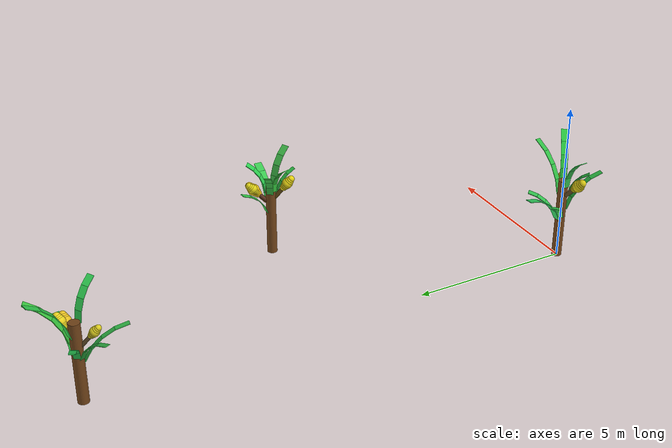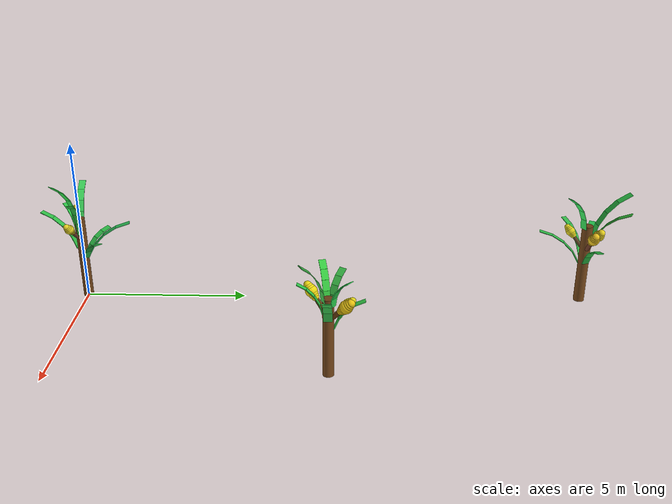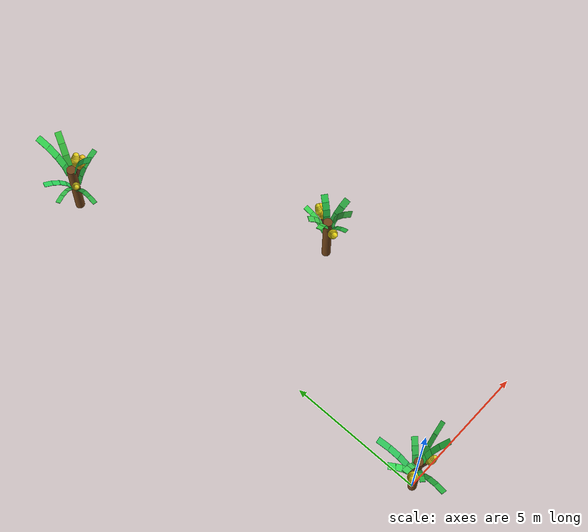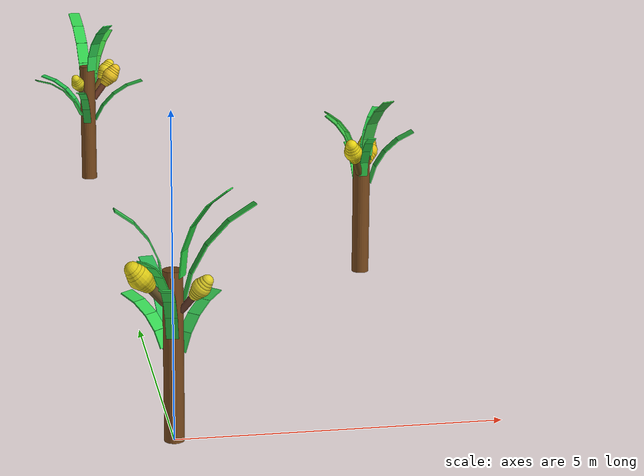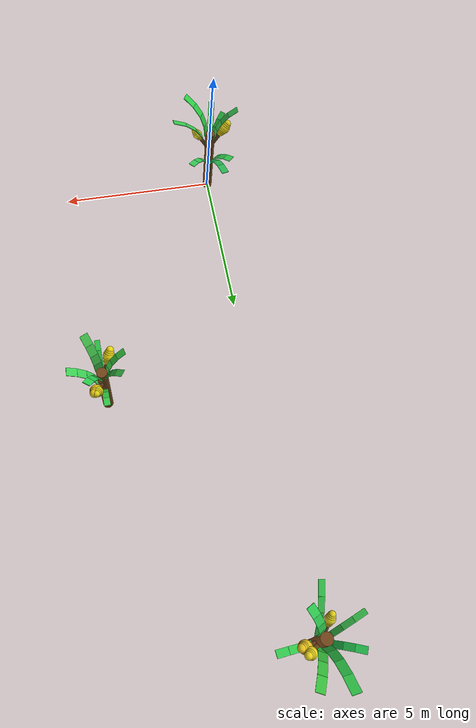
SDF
<sdf version="1.10">
 <world name="tree_world">
  <model name="tree_0_0">
   <static>true</static>
   <link name="trunk">
    <pose>0 0 1.320 0 0 0</pose>
    <collision name="trunk_collision">
     <geometry><cylinder><radius>0.153</radius><length>2.639</length></cylinder></geometry>
    </collision>
    <visual name="trunk_vis">
     <geometry><cylinder><radius>0.153</radius><length>2.639</length></cylinder></geometry>
     <material><diffuse>0.45 0.27 0.1 1</diffuse><ambient>0.45 0.27 0.1 1</ambient></material>
    </visual>
   </link>
   <link name="frond_0_0_0">
    <pose>0.147 0.018 2.108 0 0.260279 0.123816</pose>
    <collision name="frond_0_0_0_collision"><geometry><box><size>1.0 1.0 1.5</size></box></geometry></collision>
    <visual name="frond_seg_0_0_0_0">
     <pose>0.000 0 0.237 0 0.000000 0</pose>
     <geometry><box><size>0.020 0.159 0.473</size></box></geometry>
     <material><diffuse>0.19 0.75 0.27 1</diffuse><ambient>0.19 0.75 0.27 1</ambient></material>
    </visual>
    <visual name="frond_seg_0_0_0_1">
     <pose>0.061 0 0.702 0 0.261799 0</pose>
     <geometry><box><size>0.020 0.159 0.473</size></box></geometry>
     <material><diffuse>0.19 0.75 0.27 1</diffuse><ambient>0.19 0.75 0.27 1</ambient></material>
    </visual>
    <visual name="frond_seg_0_0_0_2">
     <pose>0.241 0 1.135 0 0.523599 0</pose>
     <geometry><box><size>0.020 0.159 0.473</size></box></geometry>
     <material><diffuse>0.19 0.75 0.27 1</diffuse><ambient>0.19 0.75 0.27 1</ambient></material>
    </visual>
    <visual name="frond_seg_0_0_0_3">
     <pose>0.526 0 1.507 0 0.785398 0</pose>
     <geometry><box><size>0.020 0.159 0.473</size></box></geometry>
     <material><diffuse>0.19 0.75 0.27 1</diffuse><ambient>0.19 0.75 0.27 1</ambient></material>
    </visual>
   </link>
   <link name="frond_0_0_1">
    <pose>0.105 0.105 1.344 0 0.490066 0.788202</pose>
    <visual name="frond_seg_0_0_1_0">
     <pose>0.000 0 0.150 0 0.000000 0</pose>
     <geometry><box><size>0.020 0.215 0.300</size></box></geometry>
     <material><diffuse>0.20 0.77 0.31 1</diffuse><ambient>0.20 0.77 0.31 1</ambient></material>
    </visual>
    <visual name="frond_seg_0_0_1_1">
     <pose>0.039 0 0.444 0 0.261799 0</pose>
     <geometry><box><size>0.020 0.215 0.300</size></box></geometry>
     <material><diffuse>0.20 0.77 0.31 1</diffuse><ambient>0.20 0.77 0.31 1</ambient></material>
    </visual>
    <visual name="frond_seg_0_0_1_2">
     <pose>0.152 0 0.719 0 0.523599 0</pose>
     <geometry><box><size>0.020 0.215 0.300</size></box></geometry>
     <material><diffuse>0.20 0.77 0.31 1</diffuse><ambient>0.20 0.77 0.31 1</ambient></material>
    </visual>
    <visual name="frond_seg_0_0_1_3">
     <pose>0.333 0 0.955 0 0.785398 0</pose>
     <geometry><box><size>0.020 0.215 0.300</size></box></geometry>
     <material><diffuse>0.20 0.77 0.31 1</diffuse><ambient>0.20 0.77 0.31 1</ambient></material>
    </visual>
   </link>
   <link name="frond_0_0_2">
    <pose>-0.024 0.147 1.320 0 0.497148 1.732814</pose>
    <visual name="frond_seg_0_0_2_0">
     <pose>0.000 0 0.226 0 0.000000 0</pose>
     <geometry><box><size>0.020 0.220 0.451</size></box></geometry>
     <material><diffuse>0.18 0.77 0.35 1</diffuse><ambient>0.18 0.77 0.35 1</ambient></material>
    </visual>
    <visual name="frond_seg_0_0_2_1">
     <pose>0.058 0 0.669 0 0.261799 0</pose>
     <geometry><box><size>0.020 0.220 0.451</size></box></geometry>
     <material><diffuse>0.18 0.77 0.35 1</diffuse><ambient>0.18 0.77 0.35 1</ambient></material>
    </visual>
    <visual name="frond_seg_0_0_2_2">
     <pose>0.230 0 1.083 0 0.523599 0</pose>
     <geometry><box><size>0.020 0.220 0.451</size></box></geometry>
     <material><diffuse>0.18 0.77 0.35 1</diffuse><ambient>0.18 0.77 0.35 1</ambient></material>
    </visual>
    <visual name="frond_seg_0_0_2_3">
     <pose>0.502 0 1.438 0 0.785398 0</pose>
     <geometry><box><size>0.020 0.220 0.451</size></box></geometry>
     <material><diffuse>0.18 0.77 0.35 1</diffuse><ambient>0.18 0.77 0.35 1</ambient></material>
    </visual>
   </link>
   <link name="frond_0_0_3">
    <pose>-0.096 0.114 1.422 0 0.466665 2.270636</pose>
    <visual name="frond_seg_0_0_3_0">
     <pose>0.000 0 0.137 0 0.000000 0</pose>
     <geometry><box><size>0.020 0.235 0.274</size></box></geometry>
     <material><diffuse>0.21 0.83 0.32 1</diffuse><ambient>0.21 0.83 0.32 1</ambient></material>
    </visual>
    <visual name="frond_seg_0_0_3_1">
     <pose>0.035 0 0.407 0 0.261799 0</pose>
     <geometry><box><size>0.020 0.235 0.274</size></box></geometry>
     <material><diffuse>0.21 0.83 0.32 1</diffuse><ambient>0.21 0.83 0.32 1</ambient></material>
    </visual>
    <visual name="frond_seg_0_0_3_2">
     <pose>0.140 0 0.658 0 0.523599 0</pose>
     <geometry><box><size>0.020 0.235 0.274</size></box></geometry>
     <material><diffuse>0.21 0.83 0.32 1</diffuse><ambient>0.21 0.83 0.32 1</ambient></material>
    </visual>
    <visual name="frond_seg_0_0_3_3">
     <pose>0.305 0 0.873 0 0.785398 0</pose>
     <geometry><box><size>0.020 0.235 0.274</size></box></geometry>
     <material><diffuse>0.21 0.83 0.32 1</diffuse><ambient>0.21 0.83 0.32 1</ambient></material>
    </visual>
   </link>
   <link name="frond_0_0_4">
    <pose>-0.148 -0.003 2.450 0 0.155517 3.160562</pose>
    <visual name="frond_seg_0_0_4_0">
     <pose>0.000 0 0.172 0 0.000000 0</pose>
     <geometry><box><size>0.020 0.205 0.345</size></box></geometry>
     <material><diffuse>0.23 0.81 0.34 1</diffuse><ambient>0.23 0.81 0.34 1</ambient></material>
    </visual>
    <visual name="frond_seg_0_0_4_1">
     <pose>0.045 0 0.511 0 0.261799 0</pose>
     <geometry><box><size>0.020 0.205 0.345</size></box></geometry>
     <material><diffuse>0.23 0.81 0.34 1</diffuse><ambient>0.23 0.81 0.34 1</ambient></material>
    </visual>
    <visual name="frond_seg_0_0_4_2">
     <pose>0.175 0 0.827 0 0.523599 0</pose>
     <geometry><box><size>0.020 0.205 0.345</size></box></geometry>
     <material><diffuse>0.23 0.81 0.34 1</diffuse><ambient>0.23 0.81 0.34 1</ambient></material>
    </visual>
    <visual name="frond_seg_0_0_4_3">
     <pose>0.383 0 1.098 0 0.785398 0</pose>
     <geometry><box><size>0.020 0.205 0.345</size></box></geometry>
     <material><diffuse>0.23 0.81 0.34 1</diffuse><ambient>0.23 0.81 0.34 1</ambient></material>
    </visual>
   </link>
   <link name="frond_0_0_5">
    <pose>-0.101 -0.109 2.141 0 0.250428 3.967492</pose>
    <visual name="frond_seg_0_0_5_0">
     <pose>0.000 0 0.131 0 0.000000 0</pose>
     <geometry><box><size>0.020 0.173 0.261</size></box></geometry>
     <material><diffuse>0.18 0.76 0.27 1</diffuse><ambient>0.18 0.76 0.27 1</ambient></material>
    </visual>
    <visual name="frond_seg_0_0_5_1">
     <pose>0.034 0 0.388 0 0.261799 0</pose>
     <geometry><box><size>0.020 0.173 0.261</size></box></geometry>
     <material><diffuse>0.18 0.76 0.27 1</diffuse><ambient>0.18 0.76 0.27 1</ambient></material>
    </visual>
    <visual name="frond_seg_0_0_5_2">
     <pose>0.133 0 0.627 0 0.523599 0</pose>
     <geometry><box><size>0.020 0.173 0.261</size></box></geometry>
     <material><diffuse>0.18 0.76 0.27 1</diffuse><ambient>0.18 0.76 0.27 1</ambient></material>
    </visual>
    <visual name="frond_seg_0_0_5_3">
     <pose>0.291 0 0.833 0 0.785398 0</pose>
     <geometry><box><size>0.020 0.173 0.261</size></box></geometry>
     <material><diffuse>0.18 0.76 0.27 1</diffuse><ambient>0.18 0.76 0.27 1</ambient></material>
    </visual>
   </link>
   <link name="frond_0_0_6">
    <pose>-0.031 -0.145 1.640 0 0.401200 4.503474</pose>
    <visual name="frond_seg_0_0_6_0">
     <pose>0.000 0 0.204 0 0.000000 0</pose>
     <geometry><box><size>0.020 0.186 0.409</size></box></geometry>
     <material><diffuse>0.19 0.77 0.28 1</diffuse><ambient>0.19 0.77 0.28 1</ambient></material>
    </visual>
    <visual name="frond_seg_0_0_6_1">
     <pose>0.053 0 0.606 0 0.261799 0</pose>
     <geometry><box><size>0.020 0.186 0.409</size></box></geometry>
     <material><diffuse>0.19 0.77 0.28 1</diffuse><ambient>0.19 0.77 0.28 1</ambient></material>
    </visual>
    <visual name="frond_seg_0_0_6_2">
     <pose>0.208 0 0.981 0 0.523599 0</pose>
     <geometry><box><size>0.020 0.186 0.409</size></box></geometry>
     <material><diffuse>0.19 0.77 0.28 1</diffuse><ambient>0.19 0.77 0.28 1</ambient></material>
    </visual>
    <visual name="frond_seg_0_0_6_3">
     <pose>0.455 0 1.303 0 0.785398 0</pose>
     <geometry><box><size>0.020 0.186 0.409</size></box></geometry>
     <material><diffuse>0.19 0.77 0.28 1</diffuse><ambient>0.19 0.77 0.28 1</ambient></material>
    </visual>
   </link>
   <link name="frond_0_0_7">
    <pose>0.126 -0.078 2.549 0 0.106745 5.726419</pose>
    <visual name="frond_seg_0_0_7_0">
     <pose>0.000 0 0.206 0 0.000000 0</pose>
     <geometry><box><size>0.020 0.211 0.412</size></box></geometry>
     <material><diffuse>0.17 0.82 0.27 1</diffuse><ambient>0.17 0.82 0.27 1</ambient></material>
    </visual>
    <visual name="frond_seg_0_0_7_1">
     <pose>0.053 0 0.611 0 0.261799 0</pose>
     <geometry><box><size>0.020 0.211 0.412</size></box></geometry>
     <material><diffuse>0.17 0.82 0.27 1</diffuse><ambient>0.17 0.82 0.27 1</ambient></material>
    </visual>
    <visual name="frond_seg_0_0_7_2">
     <pose>0.210 0 0.988 0 0.523599 0</pose>
     <geometry><box><size>0.020 0.211 0.412</size></box></geometry>
     <material><diffuse>0.17 0.82 0.27 1</diffuse><ambient>0.17 0.82 0.27 1</ambient></material>
    </visual>
    <visual name="frond_seg_0_0_7_3">
     <pose>0.458 0 1.312 0 0.785398 0</pose>
     <geometry><box><size>0.020 0.211 0.412</size></box></geometry>
     <material><diffuse>0.17 0.82 0.27 1</diffuse><ambient>0.17 0.82 0.27 1</ambient></material>
    </visual>
   </link>
   <link name="fruit_bunch_0_0_0">
    <pose>-0.122 -0.045 2.165 0 0.730353 3.499418</pose>
    <visual name="stalk_0_0_0">
     <pose>0 0 0.233 0 0 0</pose>
     <geometry><cylinder><radius>0.075</radius><length>0.466</length></cylinder></geometry>
     <material><diffuse>0.37 0.29 0.14 1</diffuse><ambient>0.37 0.29 0.14 1</ambient></material>
    </visual>
    <visual name="fruit_0_0_0_seg0">
     <pose>0 0 0.419 0 0 0</pose>
     <geometry><sphere><radius>0.122</radius></sphere></geometry>
     <material><diffuse>0.85 0.78 0.08 1</diffuse><ambient>0.85 0.78 0.08 1</ambient></material>
    </visual>
    <visual name="fruit_0_0_0_seg1">
     <pose>0 0 0.478 0 0 0</pose>
     <geometry><sphere><radius>0.144</radius></sphere></geometry>
     <material><diffuse>0.85 0.78 0.08 1</diffuse><ambient>0.85 0.78 0.08 1</ambient></material>
    </visual>
    <visual name="fruit_0_0_0_seg2">
     <pose>0 0 0.536 0 0 0</pose>
     <geometry><sphere><radius>0.166</radius></sphere></geometry>
     <material><diffuse>0.85 0.78 0.08 1</diffuse><ambient>0.85 0.78 0.08 1</ambient></material>
    </visual>
    <visual name="fruit_0_0_0_seg3">
     <pose>0 0 0.595 0 0 0</pose>
     <geometry><sphere><radius>0.188</radius></sphere></geometry>
     <material><diffuse>0.85 0.78 0.08 1</diffuse><ambient>0.85 0.78 0.08 1</ambient></material>
    </visual>
    <visual name="fruit_0_0_0_seg4">
     <pose>0 0 0.653 0 0 0</pose>
     <geometry><sphere><radius>0.166</radius></sphere></geometry>
     <material><diffuse>0.85 0.78 0.08 1</diffuse><ambient>0.85 0.78 0.08 1</ambient></material>
    </visual>
    <visual name="fruit_0_0_0_seg5">
     <pose>0 0 0.712 0 0 0</pose>
     <geometry><sphere><radius>0.144</radius></sphere></geometry>
     <material><diffuse>0.85 0.78 0.08 1</diffuse><ambient>0.85 0.78 0.08 1</ambient></material>
    </visual>
    <visual name="fruit_0_0_0_seg6">
     <pose>0 0 0.770 0 0 0</pose>
     <geometry><sphere><radius>0.122</radius></sphere></geometry>
     <material><diffuse>0.85 0.78 0.08 1</diffuse><ambient>0.85 0.78 0.08 1</ambient></material>
    </visual>
   </link>
   <link name="fruit_bunch_0_0_1">
    <pose>0.111 -0.066 2.037 0 0.690950 5.746272</pose>
    <visual name="stalk_0_0_1">
     <pose>0 0 0.193 0 0 0</pose>
     <geometry><cylinder><radius>0.058</radius><length>0.387</length></cylinder></geometry>
     <material><diffuse>0.39 0.22 0.15 1</diffuse><ambient>0.39 0.22 0.15 1</ambient></material>
    </visual>
    <visual name="fruit_0_0_1_seg0">
     <pose>0 0 0.351 0 0 0</pose>
     <geometry><sphere><radius>0.094</radius></sphere></geometry>
     <material><diffuse>0.88 0.81 0.14 1</diffuse><ambient>0.88 0.81 0.14 1</ambient></material>
    </visual>
    <visual name="fruit_0_0_1_seg1">
     <pose>0 0 0.400 0 0 0</pose>
     <geometry><sphere><radius>0.111</radius></sphere></geometry>
     <material><diffuse>0.88 0.81 0.14 1</diffuse><ambient>0.88 0.81 0.14 1</ambient></material>
    </visual>
    <visual name="fruit_0_0_1_seg2">
     <pose>0 0 0.449 0 0 0</pose>
     <geometry><sphere><radius>0.128</radius></sphere></geometry>
     <material><diffuse>0.88 0.81 0.14 1</diffuse><ambient>0.88 0.81 0.14 1</ambient></material>
    </visual>
    <visual name="fruit_0_0_1_seg3">
     <pose>0 0 0.498 0 0 0</pose>
     <geometry><sphere><radius>0.145</radius></sphere></geometry>
     <material><diffuse>0.88 0.81 0.14 1</diffuse><ambient>0.88 0.81 0.14 1</ambient></material>
    </visual>
    <visual name="fruit_0_0_1_seg4">
     <pose>0 0 0.547 0 0 0</pose>
     <geometry><sphere><radius>0.128</radius></sphere></geometry>
     <material><diffuse>0.88 0.81 0.14 1</diffuse><ambient>0.88 0.81 0.14 1</ambient></material>
    </visual>
    <visual name="fruit_0_0_1_seg5">
     <pose>0 0 0.596 0 0 0</pose>
     <geometry><sphere><radius>0.111</radius></sphere></geometry>
     <material><diffuse>0.88 0.81 0.14 1</diffuse><ambient>0.88 0.81 0.14 1</ambient></material>
    </visual>
    <visual name="fruit_0_0_1_seg6">
     <pose>0 0 0.645 0 0 0</pose>
     <geometry><sphere><radius>0.094</radius></sphere></geometry>
     <material><diffuse>0.88 0.81 0.14 1</diffuse><ambient>0.88 0.81 0.14 1</ambient></material>
    </visual>
   </link>
  </model>
  <model name="tree_1_0">
   <pose>4.50 7.79 0 0 0 0</pose>
   <static>true</static>
   <link name="trunk">
    <pose>0 0 1.175 0 0 0</pose>
    <visual name="trunk_vis">
     <geometry><cylinder><radius>0.157</radius><length>2.349</length></cylinder></geometry>
     <material><diffuse>0.45 0.27 0.1 1</diffuse><ambient>0.45 0.27 0.1 1</ambient></material>
    </visual>
   </link>
   <link name="frond_1_0_0">
    <pose>0.153 -0.005 1.736 0 0.312846 -0.032366</pose>
    <visual name="frond_seg_1_0_0_0">
     <pose>0.000 0 0.163 0 0.000000 0</pose>
     <geometry><box><size>0.020 0.248 0.326</size></box></geometry>
     <material><diffuse>0.23 0.80 0.32 1</diffuse><ambient>0.23 0.80 0.32 1</ambient></material>
    </visual>
    <visual name="frond_seg_1_0_0_1">
     <pose>0.042 0 0.483 0 0.261799 0</pose>
     <geometry><box><size>0.020 0.248 0.326</size></box></geometry>
     <material><diffuse>0.23 0.80 0.32 1</diffuse><ambient>0.23 0.80 0.32 1</ambient></material>
    </visual>
    <visual name="frond_seg_1_0_0_2">
     <pose>0.166 0 0.781 0 0.523599 0</pose>
     <geometry><box><size>0.020 0.248 0.326</size></box></geometry>
     <material><diffuse>0.23 0.80 0.32 1</diffuse><ambient>0.23 0.80 0.32 1</ambient></material>
    </visual>
    <visual name="frond_seg_1_0_0_3">
     <pose>0.362 0 1.037 0 0.785398 0</pose>
     <geometry><box><size>0.020 0.248 0.326</size></box></geometry>
     <material><diffuse>0.23 0.80 0.32 1</diffuse><ambient>0.23 0.80 0.32 1</ambient></material>
    </visual>
   </link>
   <link name="frond_1_0_1">
    <pose>0.092 0.122 2.137 0 0.175526 0.926188</pose>
    <visual name="frond_seg_1_0_1_0">
     <pose>0.000 0 0.138 0 0.000000 0</pose>
     <geometry><box><size>0.020 0.238 0.276</size></box></geometry>
     <material><diffuse>0.18 0.84 0.32 1</diffuse><ambient>0.18 0.84 0.32 1</ambient></material>
    </visual>
    <visual name="frond_seg_1_0_1_1">
     <pose>0.036 0 0.409 0 0.261799 0</pose>
     <geometry><box><size>0.020 0.238 0.276</size></box></geometry>
     <material><diffuse>0.18 0.84 0.32 1</diffuse><ambient>0.18 0.84 0.32 1</ambient></material>
    </visual>
    <visual name="frond_seg_1_0_1_2">
     <pose>0.140 0 0.662 0 0.523599 0</pose>
     <geometry><box><size>0.020 0.238 0.276</size></box></geometry>
     <material><diffuse>0.18 0.84 0.32 1</diffuse><ambient>0.18 0.84 0.32 1</ambient></material>
    </visual>
    <visual name="frond_seg_1_0_1_3">
     <pose>0.307 0 0.879 0 0.785398 0</pose>
     <geometry><box><size>0.020 0.238 0.276</size></box></geometry>
     <material><diffuse>0.18 0.84 0.32 1</diffuse><ambient>0.18 0.84 0.32 1</ambient></material>
    </visual>
   </link>
   <link name="frond_1_0_2">
    <pose>-0.007 0.153 1.463 0 0.405254 1.614789</pose>
    <visual name="frond_seg_1_0_2_0">
     <pose>0.000 0 0.151 0 0.000000 0</pose>
     <geometry><box><size>0.020 0.184 0.303</size></box></geometry>
     <material><diffuse>0.22 0.84 0.30 1</diffuse><ambient>0.22 0.84 0.30 1</ambient></material>
    </visual>
    <visual name="frond_seg_1_0_2_1">
     <pose>0.039 0 0.449 0 0.261799 0</pose>
     <geometry><box><size>0.020 0.184 0.303</size></box></geometry>
     <material><diffuse>0.22 0.84 0.30 1</diffuse><ambient>0.22 0.84 0.30 1</ambient></material>
    </visual>
    <visual name="frond_seg_1_0_2_2">
     <pose>0.154 0 0.726 0 0.523599 0</pose>
     <geometry><box><size>0.020 0.184 0.303</size></box></geometry>
     <material><diffuse>0.22 0.84 0.30 1</diffuse><ambient>0.22 0.84 0.30 1</ambient></material>
    </visual>
    <visual name="frond_seg_1_0_2_3">
     <pose>0.337 0 0.964 0 0.785398 0</pose>
     <geometry><box><size>0.020 0.184 0.303</size></box></geometry>
     <material><diffuse>0.22 0.84 0.30 1</diffuse><ambient>0.22 0.84 0.30 1</ambient></material>
    </visual>
   </link>
   <link name="frond_1_0_3">
    <pose>-0.128 0.084 2.113 0 0.183865 2.562481</pose>
    <visual name="frond_seg_1_0_3_0">
     <pose>0.000 0 0.131 0 0.000000 0</pose>
     <geometry><box><size>0.020 0.213 0.263</size></box></geometry>
     <material><diffuse>0.23 0.75 0.28 1</diffuse><ambient>0.23 0.75 0.28 1</ambient></material>
    </visual>
    <visual name="frond_seg_1_0_3_1">
     <pose>0.034 0 0.390 0 0.261799 0</pose>
     <geometry><box><size>0.020 0.213 0.263</size></box></geometry>
     <material><diffuse>0.23 0.75 0.28 1</diffuse><ambient>0.23 0.75 0.28 1</ambient></material>
    </visual>
    <visual name="frond_seg_1_0_3_2">
     <pose>0.134 0 0.630 0 0.523599 0</pose>
     <geometry><box><size>0.020 0.213 0.263</size></box></geometry>
     <material><diffuse>0.23 0.75 0.28 1</diffuse><ambient>0.23 0.75 0.28 1</ambient></material>
    </visual>
    <visual name="frond_seg_1_0_3_3">
     <pose>0.292 0 0.837 0 0.785398 0</pose>
     <geometry><box><size>0.020 0.213 0.263</size></box></geometry>
     <material><diffuse>0.23 0.75 0.28 1</diffuse><ambient>0.23 0.75 0.28 1</ambient></material>
    </visual>
   </link>
   <link name="frond_1_0_4">
    <pose>-0.148 -0.039 2.185 0 0.158546 3.397089</pose>
    <visual name="frond_seg_1_0_4_0">
     <pose>0.000 0 0.145 0 0.000000 0</pose>
     <geometry><box><size>0.020 0.194 0.290</size></box></geometry>
     <material><diffuse>0.22 0.81 0.26 1</diffuse><ambient>0.22 0.81 0.26 1</ambient></material>
    </visual>
    <visual name="frond_seg_1_0_4_1">
     <pose>0.038 0 0.431 0 0.261799 0</pose>
     <geometry><box><size>0.020 0.194 0.290</size></box></geometry>
     <material><diffuse>0.22 0.81 0.26 1</diffuse><ambient>0.22 0.81 0.26 1</ambient></material>
    </visual>
    <visual name="frond_seg_1_0_4_2">
     <pose>0.148 0 0.697 0 0.523599 0</pose>
     <geometry><box><size>0.020 0.194 0.290</size></box></geometry>
     <material><diffuse>0.22 0.81 0.26 1</diffuse><ambient>0.22 0.81 0.26 1</ambient></material>
    </visual>
    <visual name="frond_seg_1_0_4_3">
     <pose>0.323 0 0.925 0 0.785398 0</pose>
     <geometry><box><size>0.020 0.194 0.290</size></box></geometry>
     <material><diffuse>0.22 0.81 0.26 1</diffuse><ambient>0.22 0.81 0.26 1</ambient></material>
    </visual>
   </link>
   <link name="frond_1_0_5">
    <pose>0.001 -0.153 1.890 0 0.260609 4.721018</pose>
    <visual name="frond_seg_1_0_5_0">
     <pose>0.000 0 0.144 0 0.000000 0</pose>
     <geometry><box><size>0.020 0.154 0.287</size></box></geometry>
     <material><diffuse>0.19 0.81 0.29 1</diffuse><ambient>0.19 0.81 0.29 1</ambient></material>
    </visual>
    <visual name="frond_seg_1_0_5_1">
     <pose>0.037 0 0.426 0 0.261799 0</pose>
     <geometry><box><size>0.020 0.154 0.287</size></box></geometry>
     <material><diffuse>0.19 0.81 0.29 1</diffuse><ambient>0.19 0.81 0.29 1</ambient></material>
    </visual>
    <visual name="frond_seg_1_0_5_2">
     <pose>0.146 0 0.689 0 0.523599 0</pose>
     <geometry><box><size>0.020 0.154 0.287</size></box></geometry>
     <material><diffuse>0.19 0.81 0.29 1</diffuse><ambient>0.19 0.81 0.29 1</ambient></material>
    </visual>
    <visual name="frond_seg_1_0_5_3">
     <pose>0.320 0 0.915 0 0.785398 0</pose>
     <geometry><box><size>0.020 0.154 0.287</size></box></geometry>
     <material><diffuse>0.19 0.81 0.29 1</diffuse><ambient>0.19 0.81 0.29 1</ambient></material>
    </visual>
   </link>
   <link name="frond_1_0_6">
    <pose>0.064 -0.139 2.267 0 0.112136 5.145690</pose>
    <visual name="frond_seg_1_0_6_0">
     <pose>0.000 0 0.171 0 0.000000 0</pose>
     <geometry><box><size>0.020 0.243 0.341</size></box></geometry>
     <material><diffuse>0.25 0.75 0.29 1</diffuse><ambient>0.25 0.75 0.29 1</ambient></material>
    </visual>
    <visual name="frond_seg_1_0_6_1">
     <pose>0.044 0 0.506 0 0.261799 0</pose>
     <geometry><box><size>0.020 0.243 0.341</size></box></geometry>
     <material><diffuse>0.25 0.75 0.29 1</diffuse><ambient>0.25 0.75 0.29 1</ambient></material>
    </visual>
    <visual name="frond_seg_1_0_6_2">
     <pose>0.174 0 0.818 0 0.523599 0</pose>
     <geometry><box><size>0.020 0.243 0.341</size></box></geometry>
     <material><diffuse>0.25 0.75 0.29 1</diffuse><ambient>0.25 0.75 0.29 1</ambient></material>
    </visual>
    <visual name="frond_seg_1_0_6_3">
     <pose>0.380 0 1.087 0 0.785398 0</pose>
     <geometry><box><size>0.020 0.243 0.341</size></box></geometry>
     <material><diffuse>0.25 0.75 0.29 1</diffuse><ambient>0.25 0.75 0.29 1</ambient></material>
    </visual>
   </link>
   <link name="fruit_bunch_1_0_0">
    <pose>-0.066 -0.115 1.945 0 0.672594 4.190466</pose>
    <visual name="stalk_1_0_0">
     <pose>0 0 0.241 0 0 0</pose>
     <geometry><cylinder><radius>0.067</radius><length>0.481</length></cylinder></geometry>
     <material><diffuse>0.37 0.28 0.07 1</diffuse><ambient>0.37 0.28 0.07 1</ambient></material>
    </visual>
    <visual name="fruit_1_0_0_seg0">
     <pose>0 0 0.439 0 0 0</pose>
     <geometry><sphere><radius>0.109</radius></sphere></geometry>
     <material><diffuse>0.92 0.84 0.07 1</diffuse><ambient>0.92 0.84 0.07 1</ambient></material>
    </visual>
    <visual name="fruit_1_0_0_seg1">
     <pose>0 0 0.502 0 0 0</pose>
     <geometry><sphere><radius>0.128</radius></sphere></geometry>
     <material><diffuse>0.92 0.84 0.07 1</diffuse><ambient>0.92 0.84 0.07 1</ambient></material>
    </visual>
    <visual name="fruit_1_0_0_seg2">
     <pose>0 0 0.564 0 0 0</pose>
     <geometry><sphere><radius>0.148</radius></sphere></geometry>
     <material><diffuse>0.92 0.84 0.07 1</diffuse><ambient>0.92 0.84 0.07 1</ambient></material>
    </visual>
    <visual name="fruit_1_0_0_seg3">
     <pose>0 0 0.626 0 0 0</pose>
     <geometry><sphere><radius>0.167</radius></sphere></geometry>
     <material><diffuse>0.92 0.84 0.07 1</diffuse><ambient>0.92 0.84 0.07 1</ambient></material>
    </visual>
    <visual name="fruit_1_0_0_seg4">
     <pose>0 0 0.688 0 0 0</pose>
     <geometry><sphere><radius>0.148</radius></sphere></geometry>
     <material><diffuse>0.92 0.84 0.07 1</diffuse><ambient>0.92 0.84 0.07 1</ambient></material>
    </visual>
    <visual name="fruit_1_0_0_seg5">
     <pose>0 0 0.751 0 0 0</pose>
     <geometry><sphere><radius>0.128</radius></sphere></geometry>
     <material><diffuse>0.92 0.84 0.07 1</diffuse><ambient>0.92 0.84 0.07 1</ambient></material>
    </visual>
    <visual name="fruit_1_0_0_seg6">
     <pose>0 0 0.813 0 0 0</pose>
     <geometry><sphere><radius>0.109</radius></sphere></geometry>
     <material><diffuse>0.92 0.84 0.07 1</diffuse><ambient>0.92 0.84 0.07 1</ambient></material>
    </visual>
   </link>
   <link name="fruit_bunch_1_0_1">
    <pose>0.058 0.121 1.816 0 0.772219 1.126956</pose>
    <visual name="stalk_1_0_1">
     <pose>0 0 0.206 0 0 0</pose>
     <geometry><cylinder><radius>0.073</radius><length>0.412</length></cylinder></geometry>
     <material><diffuse>0.42 0.24 0.05 1</diffuse><ambient>0.42 0.24 0.05 1</ambient></material>
    </visual>
    <visual name="fruit_1_0_1_seg0">
     <pose>0 0 0.366 0 0 0</pose>
     <geometry><sphere><radius>0.119</radius></sphere></geometry>
     <material><diffuse>0.92 0.77 0.07 1</diffuse><ambient>0.92 0.77 0.07 1</ambient></material>
    </visual>
    <visual name="fruit_1_0_1_seg1">
     <pose>0 0 0.430 0 0 0</pose>
     <geometry><sphere><radius>0.141</radius></sphere></geometry>
     <material><diffuse>0.92 0.77 0.07 1</diffuse><ambient>0.92 0.77 0.07 1</ambient></material>
    </visual>
    <visual name="fruit_1_0_1_seg2">
     <pose>0 0 0.493 0 0 0</pose>
     <geometry><sphere><radius>0.162</radius></sphere></geometry>
     <material><diffuse>0.92 0.77 0.07 1</diffuse><ambient>0.92 0.77 0.07 1</ambient></material>
    </visual>
    <visual name="fruit_1_0_1_seg3">
     <pose>0 0 0.557 0 0 0</pose>
     <geometry><sphere><radius>0.184</radius></sphere></geometry>
     <material><diffuse>0.92 0.77 0.07 1</diffuse><ambient>0.92 0.77 0.07 1</ambient></material>
    </visual>
    <visual name="fruit_1_0_1_seg4">
     <pose>0 0 0.621 0 0 0</pose>
     <geometry><sphere><radius>0.162</radius></sphere></geometry>
     <material><diffuse>0.92 0.77 0.07 1</diffuse><ambient>0.92 0.77 0.07 1</ambient></material>
    </visual>
    <visual name="fruit_1_0_1_seg5">
     <pose>0 0 0.685 0 0 0</pose>
     <geometry><sphere><radius>0.141</radius></sphere></geometry>
     <material><diffuse>0.92 0.77 0.07 1</diffuse><ambient>0.92 0.77 0.07 1</ambient></material>
    </visual>
    <visual name="fruit_1_0_1_seg6">
     <pose>0 0 0.749 0 0 0</pose>
     <geometry><sphere><radius>0.119</radius></sphere></geometry>
     <material><diffuse>0.92 0.77 0.07 1</diffuse><ambient>0.92 0.77 0.07 1</ambient></material>
    </visual>
   </link>
   <link name="fruit_bunch_1_0_2">
    <pose>0.042 0.128 1.844 0 0.771165 1.253953</pose>
    <visual name="stalk_1_0_2">
     <pose>0 0 0.237 0 0 0</pose>
     <geometry><cylinder><radius>0.060</radius><length>0.473</length></cylinder></geometry>
     <material><diffuse>0.38 0.21 0.13 1</diffuse><ambient>0.38 0.21 0.13 1</ambient></material>
    </visual>
    <visual name="fruit_1_0_2_seg0">
     <pose>0 0 0.435 0 0 0</pose>
     <geometry><sphere><radius>0.098</radius></sphere></geometry>
     <material><diffuse>0.87 0.82 0.09 1</diffuse><ambient>0.87 0.82 0.09 1</ambient></material>
    </visual>
    <visual name="fruit_1_0_2_seg1">
     <pose>0 0 0.490 0 0 0</pose>
     <geometry><sphere><radius>0.116</radius></sphere></geometry>
     <material><diffuse>0.87 0.82 0.09 1</diffuse><ambient>0.87 0.82 0.09 1</ambient></material>
    </visual>
    <visual name="fruit_1_0_2_seg2">
     <pose>0 0 0.545 0 0 0</pose>
     <geometry><sphere><radius>0.134</radius></sphere></geometry>
     <material><diffuse>0.87 0.82 0.09 1</diffuse><ambient>0.87 0.82 0.09 1</ambient></material>
    </visual>
    <visual name="fruit_1_0_2_seg3">
     <pose>0 0 0.601 0 0 0</pose>
     <geometry><sphere><radius>0.151</radius></sphere></geometry>
     <material><diffuse>0.87 0.82 0.09 1</diffuse><ambient>0.87 0.82 0.09 1</ambient></material>
    </visual>
    <visual name="fruit_1_0_2_seg4">
     <pose>0 0 0.656 0 0 0</pose>
     <geometry><sphere><radius>0.134</radius></sphere></geometry>
     <material><diffuse>0.87 0.82 0.09 1</diffuse><ambient>0.87 0.82 0.09 1</ambient></material>
    </visual>
    <visual name="fruit_1_0_2_seg5">
     <pose>0 0 0.711 0 0 0</pose>
     <geometry><sphere><radius>0.116</radius></sphere></geometry>
     <material><diffuse>0.87 0.82 0.09 1</diffuse><ambient>0.87 0.82 0.09 1</ambient></material>
    </visual>
    <visual name="fruit_1_0_2_seg6">
     <pose>0 0 0.766 0 0 0</pose>
     <geometry><sphere><radius>0.098</radius></sphere></geometry>
     <material><diffuse>0.87 0.82 0.09 1</diffuse><ambient>0.87 0.82 0.09 1</ambient></material>
    </visual>
   </link>
  </model>
  <model name="tree_2_0">
   <pose>0.00 15.59 0 0 0 0</pose>
   <static>true</static>
   <link name="trunk">
    <pose>0 0 1.270 0 0 0</pose>
    <visual name="trunk_vis">
     <geometry><cylinder><radius>0.164</radius><length>2.540</length></cylinder></geometry>
     <material><diffuse>0.45 0.27 0.1 1</diffuse><ambient>0.45 0.27 0.1 1</ambient></material>
    </visual>
   </link>
   <link name="frond_2_0_0">
    <pose>0.159 0.017 1.336 0 0.517824 0.108081</pose>
    <visual name="frond_seg_2_0_0_0">
     <pose>0.000 0 0.176 0 0.000000 0</pose>
     <geometry><box><size>0.020 0.204 0.352</size></box></geometry>
     <material><diffuse>0.19 0.77 0.29 1</diffuse><ambient>0.19 0.77 0.29 1</ambient></material>
    </visual>
    <visual name="frond_seg_2_0_0_1">
     <pose>0.046 0 0.522 0 0.261799 0</pose>
     <geometry><box><size>0.020 0.204 0.352</size></box></geometry>
     <material><diffuse>0.19 0.77 0.29 1</diffuse><ambient>0.19 0.77 0.29 1</ambient></material>
    </visual>
    <visual name="frond_seg_2_0_0_2">
     <pose>0.179 0 0.844 0 0.523599 0</pose>
     <geometry><box><size>0.020 0.204 0.352</size></box></geometry>
     <material><diffuse>0.19 0.77 0.29 1</diffuse><ambient>0.19 0.77 0.29 1</ambient></material>
    </visual>
    <visual name="frond_seg_2_0_0_3">
     <pose>0.391 0 1.121 0 0.785398 0</pose>
     <geometry><box><size>0.020 0.204 0.352</size></box></geometry>
     <material><diffuse>0.19 0.77 0.29 1</diffuse><ambient>0.19 0.77 0.29 1</ambient></material>
    </visual>
   </link>
   <link name="frond_2_0_1">
    <pose>0.071 0.143 1.926 0 0.334093 1.109571</pose>
    <visual name="frond_seg_2_0_1_0">
     <pose>0.000 0 0.212 0 0.000000 0</pose>
     <geometry><box><size>0.020 0.236 0.424</size></box></geometry>
     <material><diffuse>0.23 0.79 0.25 1</diffuse><ambient>0.23 0.79 0.25 1</ambient></material>
    </visual>
    <visual name="frond_seg_2_0_1_1">
     <pose>0.055 0 0.629 0 0.261799 0</pose>
     <geometry><box><size>0.020 0.236 0.424</size></box></geometry>
     <material><diffuse>0.23 0.79 0.25 1</diffuse><ambient>0.23 0.79 0.25 1</ambient></material>
    </visual>
    <visual name="frond_seg_2_0_1_2">
     <pose>0.216 0 1.017 0 0.523599 0</pose>
     <geometry><box><size>0.020 0.236 0.424</size></box></geometry>
     <material><diffuse>0.23 0.79 0.25 1</diffuse><ambient>0.23 0.79 0.25 1</ambient></material>
    </visual>
    <visual name="frond_seg_2_0_1_3">
     <pose>0.472 0 1.350 0 0.785398 0</pose>
     <geometry><box><size>0.020 0.236 0.424</size></box></geometry>
     <material><diffuse>0.23 0.79 0.25 1</diffuse><ambient>0.23 0.79 0.25 1</ambient></material>
    </visual>
   </link>
   <link name="frond_2_0_2">
    <pose>-0.023 0.158 2.117 0 0.274224 1.717577</pose>
    <visual name="frond_seg_2_0_2_0">
     <pose>0.000 0 0.232 0 0.000000 0</pose>
     <geometry><box><size>0.020 0.245 0.463</size></box></geometry>
     <material><diffuse>0.19 0.82 0.30 1</diffuse><ambient>0.19 0.82 0.30 1</ambient></material>
    </visual>
    <visual name="frond_seg_2_0_2_1">
     <pose>0.060 0 0.687 0 0.261799 0</pose>
     <geometry><box><size>0.020 0.245 0.463</size></box></geometry>
     <material><diffuse>0.19 0.82 0.30 1</diffuse><ambient>0.19 0.82 0.30 1</ambient></material>
    </visual>
    <visual name="frond_seg_2_0_2_2">
     <pose>0.236 0 1.112 0 0.523599 0</pose>
     <geometry><box><size>0.020 0.245 0.463</size></box></geometry>
     <material><diffuse>0.19 0.82 0.30 1</diffuse><ambient>0.19 0.82 0.30 1</ambient></material>
    </visual>
    <visual name="frond_seg_2_0_2_3">
     <pose>0.515 0 1.476 0 0.785398 0</pose>
     <geometry><box><size>0.020 0.245 0.463</size></box></geometry>
     <material><diffuse>0.19 0.82 0.30 1</diffuse><ambient>0.19 0.82 0.30 1</ambient></material>
    </visual>
   </link>
   <link name="frond_2_0_3">
    <pose>-0.148 0.061 1.514 0 0.462579 2.746857</pose>
    <visual name="frond_seg_2_0_3_0">
     <pose>0.000 0 0.152 0 0.000000 0</pose>
     <geometry><box><size>0.020 0.194 0.305</size></box></geometry>
     <material><diffuse>0.15 0.78 0.32 1</diffuse><ambient>0.15 0.78 0.32 1</ambient></material>
    </visual>
    <visual name="frond_seg_2_0_3_1">
     <pose>0.039 0 0.452 0 0.261799 0</pose>
     <geometry><box><size>0.020 0.194 0.305</size></box></geometry>
     <material><diffuse>0.15 0.78 0.32 1</diffuse><ambient>0.15 0.78 0.32 1</ambient></material>
    </visual>
    <visual name="frond_seg_2_0_3_2">
     <pose>0.155 0 0.731 0 0.523599 0</pose>
     <geometry><box><size>0.020 0.194 0.305</size></box></geometry>
     <material><diffuse>0.15 0.78 0.32 1</diffuse><ambient>0.15 0.78 0.32 1</ambient></material>
    </visual>
    <visual name="frond_seg_2_0_3_3">
     <pose>0.339 0 0.971 0 0.785398 0</pose>
     <geometry><box><size>0.020 0.194 0.305</size></box></geometry>
     <material><diffuse>0.15 0.78 0.32 1</diffuse><ambient>0.15 0.78 0.32 1</ambient></material>
    </visual>
   </link>
   <link name="frond_2_0_4">
    <pose>-0.147 -0.062 1.451 0 0.482192 3.540292</pose>
    <visual name="frond_seg_2_0_4_0">
     <pose>0.000 0 0.183 0 0.000000 0</pose>
     <geometry><box><size>0.020 0.163 0.367</size></box></geometry>
     <material><diffuse>0.21 0.75 0.29 1</diffuse><ambient>0.21 0.75 0.29 1</ambient></material>
    </visual>
    <visual name="frond_seg_2_0_4_1">
     <pose>0.047 0 0.544 0 0.261799 0</pose>
     <geometry><box><size>0.020 0.163 0.367</size></box></geometry>
     <material><diffuse>0.21 0.75 0.29 1</diffuse><ambient>0.21 0.75 0.29 1</ambient></material>
    </visual>
    <visual name="frond_seg_2_0_4_2">
     <pose>0.187 0 0.880 0 0.523599 0</pose>
     <geometry><box><size>0.020 0.163 0.367</size></box></geometry>
     <material><diffuse>0.21 0.75 0.29 1</diffuse><ambient>0.21 0.75 0.29 1</ambient></material>
    </visual>
    <visual name="frond_seg_2_0_4_3">
     <pose>0.408 0 1.169 0 0.785398 0</pose>
     <geometry><box><size>0.020 0.163 0.367</size></box></geometry>
     <material><diffuse>0.21 0.75 0.29 1</diffuse><ambient>0.21 0.75 0.29 1</ambient></material>
    </visual>
   </link>
   <link name="frond_2_0_5">
    <pose>-0.030 -0.157 1.294 0 0.530945 4.521705</pose>
    <visual name="frond_seg_2_0_5_0">
     <pose>0.000 0 0.205 0 0.000000 0</pose>
     <geometry><box><size>0.020 0.164 0.411</size></box></geometry>
     <material><diffuse>0.20 0.76 0.29 1</diffuse><ambient>0.20 0.76 0.29 1</ambient></material>
    </visual>
    <visual name="frond_seg_2_0_5_1">
     <pose>0.053 0 0.609 0 0.261799 0</pose>
     <geometry><box><size>0.020 0.164 0.411</size></box></geometry>
     <material><diffuse>0.20 0.76 0.29 1</diffuse><ambient>0.20 0.76 0.29 1</ambient></material>
    </visual>
    <visual name="frond_seg_2_0_5_2">
     <pose>0.209 0 0.985 0 0.523599 0</pose>
     <geometry><box><size>0.020 0.164 0.411</size></box></geometry>
     <material><diffuse>0.20 0.76 0.29 1</diffuse><ambient>0.20 0.76 0.29 1</ambient></material>
    </visual>
    <visual name="frond_seg_2_0_5_3">
     <pose>0.457 0 1.308 0 0.785398 0</pose>
     <geometry><box><size>0.020 0.164 0.411</size></box></geometry>
     <material><diffuse>0.20 0.76 0.29 1</diffuse><ambient>0.20 0.76 0.29 1</ambient></material>
    </visual>
   </link>
   <link name="frond_2_0_6">
    <pose>0.080 -0.139 2.462 0 0.147825 5.234613</pose>
    <visual name="frond_seg_2_0_6_0">
     <pose>0.000 0 0.166 0 0.000000 0</pose>
     <geometry><box><size>0.020 0.226 0.332</size></box></geometry>
     <material><diffuse>0.19 0.83 0.33 1</diffuse><ambient>0.19 0.83 0.33 1</ambient></material>
    </visual>
    <visual name="frond_seg_2_0_6_1">
     <pose>0.043 0 0.492 0 0.261799 0</pose>
     <geometry><box><size>0.020 0.226 0.332</size></box></geometry>
     <material><diffuse>0.19 0.83 0.33 1</diffuse><ambient>0.19 0.83 0.33 1</ambient></material>
    </visual>
    <visual name="frond_seg_2_0_6_2">
     <pose>0.169 0 0.796 0 0.523599 0</pose>
     <geometry><box><size>0.020 0.226 0.332</size></box></geometry>
     <material><diffuse>0.19 0.83 0.33 1</diffuse><ambient>0.19 0.83 0.33 1</ambient></material>
    </visual>
    <visual name="frond_seg_2_0_6_3">
     <pose>0.369 0 1.057 0 0.785398 0</pose>
     <geometry><box><size>0.020 0.226 0.332</size></box></geometry>
     <material><diffuse>0.19 0.83 0.33 1</diffuse><ambient>0.19 0.83 0.33 1</ambient></material>
    </visual>
   </link>
   <link name="fruit_bunch_2_0_0">
    <pose>0.119 0.067 1.887 0 0.614248 0.514632</pose>
    <visual name="stalk_2_0_0">
     <pose>0 0 0.250 0 0 0</pose>
     <geometry><cylinder><radius>0.066</radius><length>0.500</length></cylinder></geometry>
     <material><diffuse>0.43 0.29 0.07 1</diffuse><ambient>0.43 0.29 0.07 1</ambient></material>
    </visual>
    <visual name="fruit_2_0_0_seg0">
     <pose>0 0 0.459 0 0 0</pose>
     <geometry><sphere><radius>0.108</radius></sphere></geometry>
     <material><diffuse>0.92 0.83 0.12 1</diffuse><ambient>0.92 0.83 0.12 1</ambient></material>
    </visual>
    <visual name="fruit_2_0_0_seg1">
     <pose>0 0 0.512 0 0 0</pose>
     <geometry><sphere><radius>0.127</radius></sphere></geometry>
     <material><diffuse>0.92 0.83 0.12 1</diffuse><ambient>0.92 0.83 0.12 1</ambient></material>
    </visual>
    <visual name="fruit_2_0_0_seg2">
     <pose>0 0 0.565 0 0 0</pose>
     <geometry><sphere><radius>0.146</radius></sphere></geometry>
     <material><diffuse>0.92 0.83 0.12 1</diffuse><ambient>0.92 0.83 0.12 1</ambient></material>
    </visual>
    <visual name="fruit_2_0_0_seg3">
     <pose>0 0 0.618 0 0 0</pose>
     <geometry><sphere><radius>0.165</radius></sphere></geometry>
     <material><diffuse>0.92 0.83 0.12 1</diffuse><ambient>0.92 0.83 0.12 1</ambient></material>
    </visual>
    <visual name="fruit_2_0_0_seg4">
     <pose>0 0 0.671 0 0 0</pose>
     <geometry><sphere><radius>0.146</radius></sphere></geometry>
     <material><diffuse>0.92 0.83 0.12 1</diffuse><ambient>0.92 0.83 0.12 1</ambient></material>
    </visual>
    <visual name="fruit_2_0_0_seg5">
     <pose>0 0 0.724 0 0 0</pose>
     <geometry><sphere><radius>0.127</radius></sphere></geometry>
     <material><diffuse>0.92 0.83 0.12 1</diffuse><ambient>0.92 0.83 0.12 1</ambient></material>
    </visual>
    <visual name="fruit_2_0_0_seg6">
     <pose>0 0 0.777 0 0 0</pose>
     <geometry><sphere><radius>0.108</radius></sphere></geometry>
     <material><diffuse>0.92 0.83 0.12 1</diffuse><ambient>0.92 0.83 0.12 1</ambient></material>
    </visual>
   </link>
   <link name="fruit_bunch_2_0_1">
    <pose>-0.067 -0.122 1.821 0 0.709296 4.206334</pose>
    <visual name="stalk_2_0_1">
     <pose>0 0 0.227 0 0 0</pose>
     <geometry><cylinder><radius>0.057</radius><length>0.455</length></cylinder></geometry>
     <material><diffuse>0.36 0.28 0.15 1</diffuse><ambient>0.36 0.28 0.15 1</ambient></material>
    </visual>
    <visual name="fruit_2_0_1_seg0">
     <pose>0 0 0.420 0 0 0</pose>
     <geometry><sphere><radius>0.092</radius></sphere></geometry>
     <material><diffuse>0.87 0.81 0.12 1</diffuse><ambient>0.87 0.81 0.12 1</ambient></material>
    </visual>
    <visual name="fruit_2_0_1_seg1">
     <pose>0 0 0.470 0 0 0</pose>
     <geometry><sphere><radius>0.108</radius></sphere></geometry>
     <material><diffuse>0.87 0.81 0.12 1</diffuse><ambient>0.87 0.81 0.12 1</ambient></material>
    </visual>
    <visual name="fruit_2_0_1_seg2">
     <pose>0 0 0.520 0 0 0</pose>
     <geometry><sphere><radius>0.125</radius></sphere></geometry>
     <material><diffuse>0.87 0.81 0.12 1</diffuse><ambient>0.87 0.81 0.12 1</ambient></material>
    </visual>
    <visual name="fruit_2_0_1_seg3">
     <pose>0 0 0.570 0 0 0</pose>
     <geometry><sphere><radius>0.141</radius></sphere></geometry>
     <material><diffuse>0.87 0.81 0.12 1</diffuse><ambient>0.87 0.81 0.12 1</ambient></material>
    </visual>
    <visual name="fruit_2_0_1_seg4">
     <pose>0 0 0.621 0 0 0</pose>
     <geometry><sphere><radius>0.125</radius></sphere></geometry>
     <material><diffuse>0.87 0.81 0.12 1</diffuse><ambient>0.87 0.81 0.12 1</ambient></material>
    </visual>
    <visual name="fruit_2_0_1_seg5">
     <pose>0 0 0.671 0 0 0</pose>
     <geometry><sphere><radius>0.108</radius></sphere></geometry>
     <material><diffuse>0.87 0.81 0.12 1</diffuse><ambient>0.87 0.81 0.12 1</ambient></material>
    </visual>
    <visual name="fruit_2_0_1_seg6">
     <pose>0 0 0.721 0 0 0</pose>
     <geometry><sphere><radius>0.092</radius></sphere></geometry>
     <material><diffuse>0.87 0.81 0.12 1</diffuse><ambient>0.87 0.81 0.12 1</ambient></material>
    </visual>
   </link>
   <link name="fruit_bunch_2_0_2">
    <pose>0.136 0.022 1.813 0 0.665312 0.161342</pose>
    <visual name="stalk_2_0_2">
     <pose>0 0 0.247 0 0 0</pose>
     <geometry><cylinder><radius>0.070</radius><length>0.494</length></cylinder></geometry>
     <material><diffuse>0.41 0.21 0.13 1</diffuse><ambient>0.41 0.21 0.13 1</ambient></material>
    </visual>
    <visual name="fruit_2_0_2_seg0">
     <pose>0 0 0.450 0 0 0</pose>
     <geometry><sphere><radius>0.114</radius></sphere></geometry>
     <material><diffuse>0.92 0.76 0.12 1</diffuse><ambient>0.92 0.76 0.12 1</ambient></material>
    </visual>
    <visual name="fruit_2_0_2_seg1">
     <pose>0 0 0.507 0 0 0</pose>
     <geometry><sphere><radius>0.135</radius></sphere></geometry>
     <material><diffuse>0.92 0.76 0.12 1</diffuse><ambient>0.92 0.76 0.12 1</ambient></material>
    </visual>
    <visual name="fruit_2_0_2_seg2">
     <pose>0 0 0.564 0 0 0</pose>
     <geometry><sphere><radius>0.155</radius></sphere></geometry>
     <material><diffuse>0.92 0.76 0.12 1</diffuse><ambient>0.92 0.76 0.12 1</ambient></material>
    </visual>
    <visual name="fruit_2_0_2_seg3">
     <pose>0 0 0.621 0 0 0</pose>
     <geometry><sphere><radius>0.176</radius></sphere></geometry>
     <material><diffuse>0.92 0.76 0.12 1</diffuse><ambient>0.92 0.76 0.12 1</ambient></material>
    </visual>
    <visual name="fruit_2_0_2_seg4">
     <pose>0 0 0.678 0 0 0</pose>
     <geometry><sphere><radius>0.155</radius></sphere></geometry>
     <material><diffuse>0.92 0.76 0.12 1</diffuse><ambient>0.92 0.76 0.12 1</ambient></material>
    </visual>
    <visual name="fruit_2_0_2_seg5">
     <pose>0 0 0.735 0 0 0</pose>
     <geometry><sphere><radius>0.135</radius></sphere></geometry>
     <material><diffuse>0.92 0.76 0.12 1</diffuse><ambient>0.92 0.76 0.12 1</ambient></material>
    </visual>
    <visual name="fruit_2_0_2_seg6">
     <pose>0 0 0.792 0 0 0</pose>
     <geometry><sphere><radius>0.114</radius></sphere></geometry>
     <material><diffuse>0.92 0.76 0.12 1</diffuse><ambient>0.92 0.76 0.12 1</ambient></material>
    </visual>
   </link>
  </model>
 </world>
</sdf>
